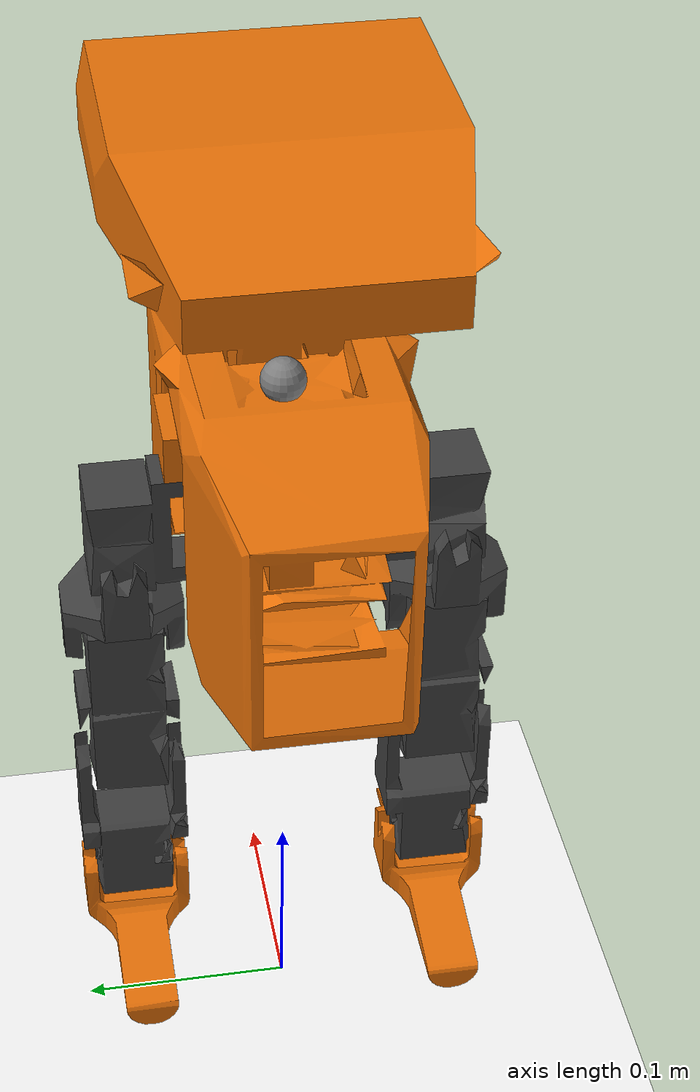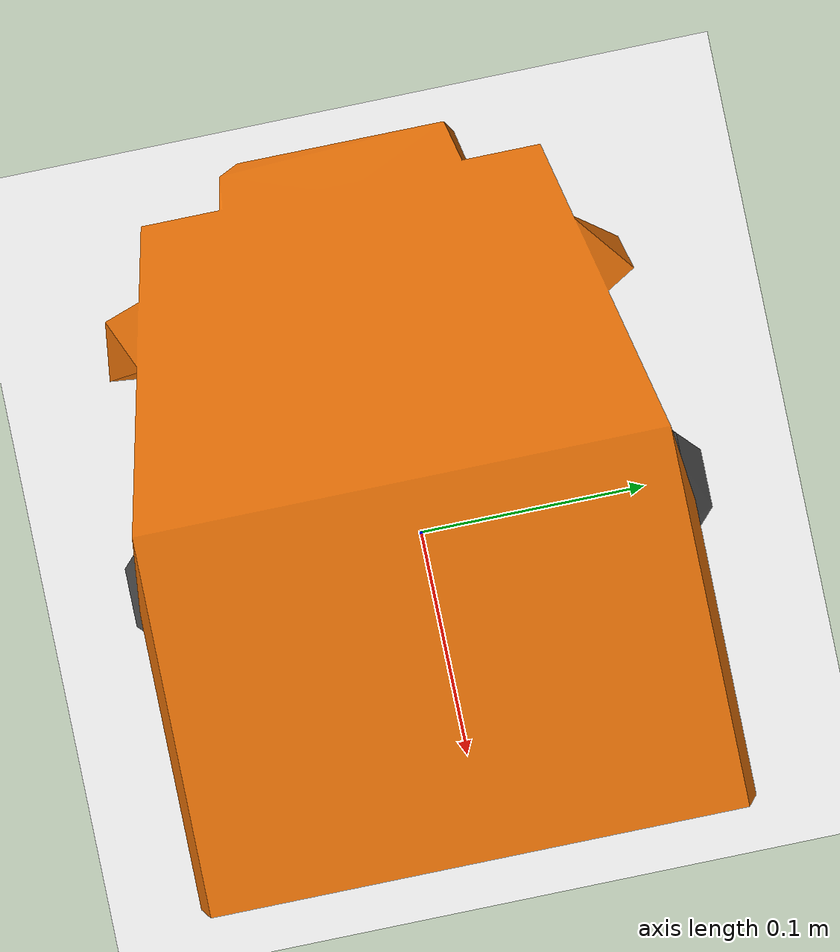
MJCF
<mujoco model="BD-5 flat scene">
  <include file="BD-5_V3.xml"/>

  <statistic center="0 0 0.1" extent="0.8" meansize="0.04"/>

  <visual>
    <headlight diffuse=".8 .8 .8" ambient=".2 .2 .2" specular="1 1 1"/>
    <rgba force="1 0 0 1"/>
    <global azimuth="120" elevation="-20"/>
    <map force="0.01"/>
    <scale forcewidth="0.3" contactwidth="0.5" contactheight="0.2"/>
    <quality shadowsize="8192"/>
  </visual>

  <asset>
    <texture type="skybox" builtin="gradient" rgb1="1 1 1" rgb2="1 1 1" width="800" height="800"/>
    <texture type="2d" name="groundplane" builtin="checker" mark="edge" rgb1="1 1 1" rgb2="1 1 1" markrgb="0 0 0"
      width="300" height="300"/>
    <material name="groundplane" texture="groundplane" texuniform="true" texrepeat="5 5" reflectance="0"/>
  </asset>

  <worldbody>
    <body name="floor">
      <geom name="floor" size="0 0 0.01" type="plane" material="groundplane" contype="1" conaffinity="0" priority="1"
        friction="0.6" condim="3"/>
    </body>
  </worldbody>

  <keyframe>
    <key name="init_pose"
      qpos="
      0 0 0.275
      1 0 0 0
      0.0
      0.0
      0.82498
      1.64996
      0.82498
      0.0
      0.0
      0.82498
      1.64996
      0.82498"
      ctrl="
      0.0
      0.0
      0.82498
      1.64996
      0.82498
      0.0
      0.0
      0.82498
      1.64996
      0.82498"/>
    <key name="zero_pose"
      qpos="
      0 0 0.26
      1 0 0 0
      0.0
      0.0
      0.0
      0.0
      0.0
      0.0
      0.0
      0.0
      0.0
      0.0"/>
  </keyframe>
</mujoco>

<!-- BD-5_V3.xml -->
<mujoco model="BD-5">

  <compiler angle="radian" autolimits="true"/>
  <option iterations="1" ls_iterations="5" timestep="0.002" integrator="Euler" gravity="0 0 -9.81">
    <flag eulerdamp="disable"/>
  </option>

  <default>
    <joint limited="true" damping="1.084" armature="0.045" frictionloss="0.03" />
    <position inheritrange="1.0" kp="21.1" kv="0" forcerange="-4.1 4.1"/>
    <default class="visualgeom">
      <geom material="visualgeom" density="0" contype="0" conaffinity="0" group="2"/>
    </default>
    <default class="collision">
      <geom condim="6" friction="0.8 0.02 0.01" group="3" />
    </default>
  </default>

  <asset>
    <mesh name="BODY" file="assets/BODY.STL" maxhullvert="20"/>
    <mesh name="HIP_LEFT" file="assets/HIP_LEFT.STL" maxhullvert="20"/>
    <mesh name="HIP_ROLL_LEFT" file="assets/HIP_ROLL_LEFT.STL" maxhullvert="20"/>
    <mesh name="THIGH_LEFT" file="assets/THIGH_LEFT.STL" maxhullvert="20"/>
    <mesh name="CALF_LEFT" file="assets/CALF_LEFT.STL" maxhullvert="20"/>
    <mesh name="FOOT_LEFT" file="assets/FOOT_LEFT.STL" maxhullvert="20"/>
    <mesh name="FOOT_LEFT_COLLISION" file="assets/FOOT_LEFT.STL" maxhullvert="20"/>
    <mesh name="HIP_RIGHT" file="assets/HIP_RIGHT.STL" maxhullvert="20"/>
    <mesh name="HIP_ROLL_RIGHT" file="assets/HIP_ROLL_RIGHT.STL" maxhullvert="20"/>
    <mesh name="THIGH_RIGHT" file="assets/THIGH_RIGHT.STL" maxhullvert="20"/>
    <mesh name="CALF_RIGHT" file="assets/CALF_RIGHT.STL" maxhullvert="20"/>
    <mesh name="FOOT_RIGHT" file="assets/FOOT_RIGHT.STL" maxhullvert="20"/>
    <mesh name="FOOT_RIGHT_COLLISION" file="assets/FOOT_RIGHT.STL" maxhullvert="20"/>
    <material name="visualgeom" rgba="0.5 0.9 0.2 1" />
  </asset>

  <worldbody>
    <body name="base_body" pos="0 0 0.3170777382037414" quat="1 0 0 0">
      <freejoint name="base_body" />
      <site name="imu" size="0.01" pos="-0.00121 0.00083 0.05123" />
      <camera name="front" mode="trackcom" pos="0 -3.0 0.8170777382037414" xyaxes="1 0 0 0 0 1" />
      <camera name="track" mode="trackcom" pos="0 -3.0 0.8170777382037414" xyaxes="1 0 0 0 0 1" />
      <geom type="mesh" rgba="0.9098 0.44314 0.031373 1" mesh="BODY" class="visualgeom" />
      <inertial pos="-0.00035 0.00081 0.03798" quat="0.719488 -0.00575874 -0.00168823 0.694479" mass="0.92059" diaginertia="0.00577547 0.00468576 0.00266097"/>
      <body name="HIP_LEFT" pos="0 0.01425 -0.0436">
        <inertial pos="0.00185 0.05284 0.02786" quat="0.460341 -0.108037 -0.0721488 0.878185" mass="0.101" diaginertia="4.55664e-05 4.08892e-05 2.89285e-05" />
        <joint name="left_hip_yaw" pos="0 0 0" axis="0 0 1" range="-0.37899 0.37899" actuatorfrcrange="-4.1 4.1" damping="1.084" armature="0.045" frictionloss="0.03" />
        <geom type="mesh" rgba="0.25098 0.25098 0.25098 1" mesh="HIP_LEFT" class="visualgeom" />
        <body name="HIP_ROLL_LEFT" pos="0 0.05925 0.01275">
          <inertial pos="0 0 -0.02515" quat="0.500015 0.499985 -0.500015 0.499985" mass="0.018" diaginertia="7.87081e-06 6.25751e-06 5.92983e-06" />
          <joint name="left_hip_roll" pos="0 0 0" axis="-1 0 0" range="-1.8827 0.38819" actuatorfrcrange="-4.1 4.1" damping="1.084" armature="0.045" frictionloss="0.03" />
          <geom type="mesh" rgba="0.25098 0.25098 0.25098 1" mesh="HIP_ROLL_LEFT" class="visualgeom" />
          <body name="THIGH_LEFT" pos="0 0 -0.05">
            <inertial pos="0 0.00215 -0.03525" quat="0.999988 0 0.0049764 0" mass="0.174" diaginertia="0.000111454 9.33677e-05 5.11876e-05" />
            <joint name="left_hip_pitch" pos="0 0 0" axis="0 1 0" range="-1.7492 1.7492" actuatorfrcrange="-4.1 4.1" damping="1.084" armature="0.045" frictionloss="0.03" />
            <geom type="mesh" rgba="0.25098 0.25098 0.25098 1" mesh="THIGH_LEFT" class="visualgeom" />
            <body name="CALF_LEFT" pos="0 0 -0.0705">
              <inertial pos="0.00034 0.00191 -0.05036" quat="0.900306 0.428328 -0.0231046 -0.0738207" mass="0.098" diaginertia="4.49978e-05 3.42466e-05 2.77625e-05" />
              <joint name="left_knee" pos="0 0 0" axis="0 -1 0" range="0 2.3829" actuatorfrcrange="-4.1 4.1" damping="1.084" armature="0.045" frictionloss="0.03" />
              <geom type="mesh" rgba="0.25098 0.25098 0.25098 1" mesh="CALF_LEFT" class="visualgeom" />
              <body name="FOOT_LEFT" pos="0 0 -0.07064">
                <inertial pos="0 0 -0.03334" quat="0 0.707107 0 0.707107" mass="0.032" diaginertia="3.17443e-05 3.16424e-05 6.9037e-06" />
                <joint name="left_ankle" pos="0 0 0" axis="0 1 0" range="-1.8873 1.8873" actuatorfrcrange="-4.1 4.1" damping="1.084" armature="0.045" frictionloss="0.03" />
                <geom name="collision_foot_left" type="mesh" mesh="FOOT_LEFT_COLLISION" class="collision" />
                <geom type="mesh" rgba="0.9098 0.44314 0.031373 1" mesh="FOOT_LEFT" class="visualgeom" />
                <site name="left_foot_site" size="0.010" pos="0 0 -0.048"/>
              </body>
            </body>
          </body>
        </body>
      </body>
      <body name="HIP_RIGHT" pos="0 -0.01425 -0.0436">
        <inertial pos="0.00185 -0.0535 0.02786" quat="0.649192 0.572543 -0.368859 0.338655" mass="0.101" diaginertia="4.61603e-05 4.12116e-05 2.96353e-05" />
        <joint name="right_hip_yaw" pos="0 0 0" axis="0 0 1" range="-0.37899 0.37899" actuatorfrcrange="-4.1 4.1" damping="1.084" armature="0.045" frictionloss="0.03" />
        <geom type="mesh" rgba="0.25098 0.25098 0.25098 1" mesh="HIP_RIGHT" class="visualgeom" />
        <body name="HIP_ROLL_RIGHT" pos="0 -0.05925 0.01275">
          <inertial pos="0 0 -0.02515" quat="-2.15792e-05 0.707107 2.15792e-05 0.707107" mass="0.018" diaginertia="7.87081e-06 6.25751e-06 5.92983e-06" />
          <joint name="right_hip_roll" pos="0 0 0" axis="1 0 0" range="-1.8827 0.38819" actuatorfrcrange="-4.1 4.1" damping="1.084" armature="0.045" frictionloss="0.03" />
          <geom type="mesh" rgba="0.25098 0.25098 0.25098 1" mesh="HIP_ROLL_RIGHT" class="visualgeom" />
          <body name="THIGH_RIGHT" pos="0 0 -0.05">
            <inertial pos="0 0.00215 -0.03525" quat="0.999988 0 0.0049764 0" mass="0.174" diaginertia="0.000111454 9.33677e-05 5.11876e-05" />
            <joint name="right_hip_pitch" pos="0 0 0" axis="0 1 0" range="-1.7492 1.7492" actuatorfrcrange="-4.1 4.1" damping="1.084" armature="0.045" frictionloss="0.03" />
            <geom type="mesh" rgba="0.25098 0.25098 0.25098 1" mesh="THIGH_RIGHT" class="visualgeom" />
            <body name="CALF_RIGHT" pos="0 0 -0.0705">
              <inertial pos="0.00034 0.00191 -0.05036" quat="0.900306 0.428328 -0.0231046 -0.0738207" mass="0.098" diaginertia="4.49978e-05 3.42466e-05 2.77625e-05" />
              <joint name="right_knee" pos="0 0 0" axis="0 -1 0" range="0 2.3829" actuatorfrcrange="-4.1 4.1" damping="1.084" armature="0.045" frictionloss="0.03" />
              <geom type="mesh" rgba="0.25098 0.25098 0.25098 1" mesh="CALF_RIGHT" class="visualgeom" />
              <body name="FOOT_RIGHT" pos="0 0 -0.07064">
                <inertial pos="0 0 -0.03334" quat="0 0.707107 0 0.707107" mass="0.032" diaginertia="3.17443e-05 3.16424e-05 6.9037e-06" />
                <joint name="right_ankle" pos="0 0 0" axis="0 1 0" range="-1.8873 1.8873" actuatorfrcrange="-4.1 4.1" damping="1.084" armature="0.045" frictionloss="0.03" />
                <geom name="collision_foot_right" type="mesh" mesh="FOOT_RIGHT_COLLISION" class="collision" />
                <geom type="mesh" rgba="0.9098 0.44314 0.031373 1" mesh="FOOT_RIGHT" class="visualgeom" />
                <site name="right_foot_site" size="0.010" pos="0 0 -0.048"/>
              </body>
            </body>
          </body>
        </body>
      </body>
    </body>
  </worldbody>

  <actuator>
    <position name="left_hip_yaw" joint="left_hip_yaw" inheritrange="1"/>
    <position name="left_hip_roll" joint="left_hip_roll" inheritrange="1"/>
    <position name="left_hip_pitch" joint="left_hip_pitch" inheritrange="1"/>
    <position name="left_knee" joint="left_knee" inheritrange="1"/>
    <position name="left_ankle" joint="left_ankle" inheritrange="1"/>
    <position name="right_hip_yaw" joint="right_hip_yaw" inheritrange="1"/>
    <position name="right_hip_roll" joint="right_hip_roll" inheritrange="1"/>
    <position name="right_hip_pitch" joint="right_hip_pitch" inheritrange="1"/>
    <position name="right_knee" joint="right_knee" inheritrange="1"/>
    <position name="right_ankle" joint="right_ankle" inheritrange="1"/>
  </actuator>

  <sensor>
    <gyro site="imu" name="gyro"/>
    <velocimeter site="imu" name="local_linvel"/>
    <accelerometer site="imu" name="accelerometer"/>
    <framepos objtype="site" objname="imu" name="position"/>
    <framezaxis objtype="site" objname="imu" name="upvector"/>
    <framexaxis objtype="site" objname="imu" name="forwardvector"/>
    <framelinvel objtype="site" objname="imu" name="global_linvel"/>
    <frameangvel objtype="site" objname="imu" name="global_angvel"/>
    <framequat objtype="site" objname="imu" name="orientation"/>
    <framelinvel objtype="site" objname="left_foot_site" name="left_foot_global_linvel"/>
    <framelinvel objtype="site" objname="right_foot_site" name="right_foot_global_linvel"/>
    <framepos objtype="site" objname="left_foot_site" name="left_foot_pos"/>
    <framepos objtype="site" objname="right_foot_site" name="right_foot_pos"/>
  </sensor>
</mujoco>
